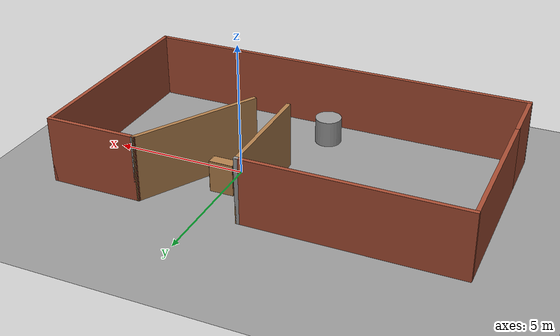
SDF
<sdf version="1.6">
 <world name="default">
  <light name="sun" type="directional">
   <pose>0 0 10 0 -0 0</pose>
   <diffuse>0.8 0.8 0.8 1</diffuse>
   <specular>0.2 0.2 0.2 1</specular>
   <attenuation>
    <range>1000</range>
    <constant>0.9</constant>
    <linear>0.01</linear>
    <quadratic>0.001</quadratic>
   </attenuation>
   <direction>0.5 0.1 -0.9</direction>
  </light>
  <scene><ambient>0.4 0.4 0.4 1</ambient><background>0.7 0.7 0.7 1</background><shadows>1</shadows></scene>
  <physics name="default_physics" default="0" type="ode">
   <max_step_size>0.01</max_step_size>
   <real_time_factor>1</real_time_factor>
   <real_time_update_rate>100</real_time_update_rate>
  </physics>
  <model name="bookshelf">
   <static>1</static>
   <link name="link">
    <inertial><mass>1</mass></inertial>
    <collision name="back">
     <pose>0 0.005 0.6 0 -0 0</pose>
     <geometry><box><size>0.9 0.01 1.2</size></box></geometry>
    </collision>
    <visual name="visual1">
     <pose>0 0.005 0.6 0 -0 0</pose>
     <geometry><box><size>0.9 0.01 1.2</size></box></geometry>
     <material>
      <script><uri>file://media/materials/scripts/gazebo.material</uri><name>Gazebo/Wood</name></script>
     </material>
    </visual>
    <collision name="left_side">
     <pose>0.45 -0.195 0.6 0 -0 0</pose>
     <geometry><box><size>0.02 0.4 1.2</size></box></geometry>
    </collision>
    <visual name="visual2">
     <pose>0.45 -0.195 0.6 0 -0 0</pose>
     <geometry><box><size>0.02 0.4 1.2</size></box></geometry>
     <material>
      <script><uri>file://media/materials/scripts/gazebo.material</uri><name>Gazebo/Wood</name></script>
     </material>
    </visual>
    <collision name="right_side">
     <pose>-0.45 -0.195 0.6 0 -0 0</pose>
     <geometry><box><size>0.02 0.4 1.2</size></box></geometry>
    </collision>
    <visual name="visual3">
     <pose>-0.45 -0.195 0.6 0 -0 0</pose>
     <geometry><box><size>0.02 0.4 1.2</size></box></geometry>
     <material>
      <script><uri>file://media/materials/scripts/gazebo.material</uri><name>Gazebo/Wood</name></script>
     </material>
    </visual>
    <collision name="bottom">
     <pose>0 -0.195 0.03 0 -0 0</pose>
     <geometry><box><size>0.88 0.4 0.06</size></box></geometry>
    </collision>
    <visual name="visual4">
     <pose>0 -0.195 0.03 0 -0 0</pose>
     <geometry><box><size>0.88 0.4 0.06</size></box></geometry>
     <material>
      <script><uri>file://media/materials/scripts/gazebo.material</uri><name>Gazebo/Wood</name></script>
     </material>
    </visual>
    <collision name="top">
     <pose>0 -0.195 1.19 0 -0 0</pose>
     <geometry><box><size>0.88 0.4 0.02</size></box></geometry>
    </collision>
    <visual name="visual5">
     <pose>0 -0.195 1.19 0 -0 0</pose>
     <geometry><box><size>0.88 0.4 0.02</size></box></geometry>
     <material>
      <script><uri>file://media/materials/scripts/gazebo.material</uri><name>Gazebo/Wood</name></script>
     </material>
    </visual>
    <collision name="low_shelf">
     <pose>0 -0.195 0.43 0 -0 0</pose>
     <geometry><box><size>0.88 0.4 0.02</size></box></geometry>
    </collision>
    <visual name="visual6">
     <pose>0 -0.195 0.43 0 -0 0</pose>
     <geometry><box><size>0.88 0.4 0.02</size></box></geometry>
     <material>
      <script><uri>file://media/materials/scripts/gazebo.material</uri><name>Gazebo/Wood</name></script>
     </material>
    </visual>
    <collision name="high_shelf">
     <pose>0 -0.195 0.8 0 -0 0</pose>
     <geometry><box><size>0.88 0.4 0.02</size></box></geometry>
    </collision>
    <visual name="visual7">
     <pose>0 -0.195 0.8 0 -0 0</pose>
     <geometry><box><size>0.88 0.4 0.02</size></box></geometry>
     <material>
      <script><uri>file://media/materials/scripts/gazebo.material</uri><name>Gazebo/Wood</name></script>
     </material>
    </visual>
    <velocity_decay><linear>0</linear><angular>0</angular></velocity_decay>
   </link>
   <pose>0 1.53026 0 0 -0 0</pose>
  </model>
  <model name="ground_plane_0">
   <static>1</static>
   <link name="link">
    <collision name="collision">
     <geometry><plane><normal>0 0 1</normal><size>100 100</size></plane></geometry>
     <surface><friction><ode><mu>100</mu><mu2>50</mu2></ode></friction></surface>
    </collision>
    <visual name="visual">
     <cast_shadows>0</cast_shadows>
     <geometry><plane><normal>0 0 1</normal><size>100 100</size></plane></geometry>
     <material>
      <script><uri>file://media/materials/scripts/gazebo.material</uri><name>Gazebo/Grey</name></script>
     </material>
    </visual>
    <velocity_decay><linear>0</linear><angular>0</angular></velocity_decay>
   </link>
   <pose>0.497681 0 0 0 -0 0</pose>
  </model>
  <model name="unit_cylinder_1">
   <pose>-2 -3.4888 0.5 0 -0 0</pose>
   <link name="link">
    <inertial>
     <mass>1</mass>
     <inertia><ixx>1</ixx><ixy>0</ixy><ixz>0</ixz><iyy>1</iyy><iyz>0</iyz><izz>1</izz></inertia>
    </inertial>
    <collision name="collision">
     <geometry><cylinder><radius>0.5</radius><length>1</length></cylinder></geometry>
    </collision>
    <visual name="visual">
     <geometry><cylinder><radius>0.5</radius><length>1</length></cylinder></geometry>
     <material>
      <script><uri>file://media/materials/scripts/gazebo.material</uri><name>Gazebo/Grey</name></script>
     </material>
    </visual>
    <velocity_decay><linear>0</linear><angular>0</angular></velocity_decay>
   </link>
   <static>0</static>
  </model>
  <gravity>0 0 -9.8</gravity>
  <magnetic_field>6e-06 2.3e-05 -4.2e-05</magnetic_field>
  <atmosphere type="adiabatic"/>
  <spherical_coordinates>
   <surface_model>EARTH_WGS84</surface_model>
   <latitude_deg>0</latitude_deg>
   <longitude_deg>0</longitude_deg>
   <elevation>0</elevation>
   <heading_deg>0</heading_deg>
  </spherical_coordinates>
  <model name="home">
   <pose>-1.7113 -0.862075 0 0 -0 0</pose>
   <link name="Wall_10">
    <collision name="Wall_10_Collision">
     <geometry><box><size>3.5 0.15 2.5</size></box></geometry>
     <pose>0 0 1.25 0 -0 0</pose>
    </collision>
    <visual name="Wall_10_Visual">
     <pose>0 0 1.25 0 -0 0</pose>
     <geometry><box><size>3.5 0.15 2.5</size></box></geometry>
     <material>
      <script><uri>file://media/materials/scripts/gazebo.material</uri><name>Gazebo/Bricks</name></script>
      <ambient>1 1 1 1</ambient>
     </material>
     <meta><layer>0</layer></meta>
    </visual>
    <pose>5.8125 3.9114 0 0 -0 0</pose>
   </link>
   <link name="Wall_11">
    <collision name="Wall_11_Collision">
     <geometry><box><size>8 0.15 2.5</size></box></geometry>
     <pose>0 0 1.25 0 -0 0</pose>
    </collision>
    <visual name="Wall_11_Visual">
     <pose>0 0 1.25 0 -0 0</pose>
     <geometry><box><size>8 0.15 2.5</size></box></geometry>
     <material>
      <script><uri>file://media/materials/scripts/gazebo.material</uri><name>Gazebo/Bricks</name></script>
      <ambient>1 1 1 1</ambient>
     </material>
     <meta><layer>0</layer></meta>
    </visual>
    <pose>7.4875 -0.013601 0 0 0 -1.5708</pose>
   </link>
   <link name="Wall_14">
    <collision name="Wall_14_Collision">
     <geometry><box><size>2.25 0.15 2.5</size></box></geometry>
     <pose>0 0 1.25 0 -0 0</pose>
    </collision>
    <visual name="Wall_14_Visual">
     <pose>0 0 1.25 0 -0 0</pose>
     <geometry><box><size>2.25 0.15 2.5</size></box></geometry>
     <material>
      <script><uri>file://media/materials/scripts/gazebo.material</uri><name>Gazebo/Bricks</name></script>
      <ambient>1 1 1 1</ambient>
     </material>
     <meta><layer>0</layer></meta>
    </visual>
    <pose>-7.4875 -2.83882 0 0 0 -1.5708</pose>
   </link>
   <link name="Wall_18">
    <collision name="Wall_18_Collision">
     <geometry><box><size>15.1251 0.15 2.5</size></box></geometry>
     <pose>0 0 1.25 0 -0 0</pose>
    </collision>
    <visual name="Wall_18_Visual">
     <pose>0 0 1.25 0 -0 0</pose>
     <geometry><box><size>15.1251 0.15 2.5</size></box></geometry>
     <material>
      <script><uri>file://media/materials/scripts/gazebo.material</uri><name>Gazebo/Bricks</name></script>
      <ambient>1 1 1 1</ambient>
     </material>
     <meta><layer>0</layer></meta>
    </visual>
    <pose>0 -3.91371 0 0 0 -0.003324</pose>
   </link>
   <link name="Wall_2">
    <collision name="Wall_2_Collision">
     <geometry><box><size>4.25 0.15 2.5</size></box></geometry>
     <pose>0 0 1.25 0 -0 0</pose>
    </collision>
    <visual name="Wall_2_Visual">
     <pose>0 0 1.25 0 -0 0</pose>
     <geometry><box><size>4.25 0.15 2.5</size></box></geometry>
     <material>
      <script><uri>file://media/materials/scripts/gazebo.material</uri><name>Gazebo/Wood</name></script>
      <ambient>1 1 1 1</ambient>
     </material>
     <meta><layer>0</layer></meta>
    </visual>
    <pose>0.3625 1.76117 0 0 -0 1.5708</pose>
   </link>
   <link name="Wall_3">
    <collision name="Wall_3_Collision">
     <geometry><box><size>0.15 0.15 2.5</size></box></geometry>
     <pose>0 0 1.25 0 -0 0</pose>
    </collision>
    <visual name="Wall_3_Visual">
     <pose>0 0 1.25 0 -0 0</pose>
     <geometry><box><size>0.15 0.15 2.5</size></box></geometry>
     <material>
      <script><uri>file://media/materials/scripts/gazebo.material</uri><name>Gazebo/Grey</name></script>
      <ambient>1 1 1 1</ambient>
     </material>
     <meta><layer>0</layer></meta>
    </visual>
    <pose>0.3625 3.81117 0 0 -0 0</pose>
   </link>
   <link name="Wall_4">
    <collision name="Wall_4_Collision">
     <geometry><box><size>8 0.15 2.5</size></box></geometry>
     <pose>0 0 1.25 0 -0 0</pose>
    </collision>
    <visual name="Wall_4_Visual">
     <pose>0 0 1.25 0 -0 0</pose>
     <geometry><box><size>8 0.15 2.5</size></box></geometry>
     <material>
      <script><uri>file://media/materials/scripts/gazebo.material</uri><name>Gazebo/Bricks</name></script>
      <ambient>1 1 1 1</ambient>
     </material>
     <meta><layer>0</layer></meta>
    </visual>
    <pose>-3.5625 3.81117 0 0 -0 3.14159</pose>
   </link>
   <link name="Wall_5">
    <collision name="Wall_5_Collision">
     <geometry><box><size>5.75 0.15 2.5</size></box></geometry>
     <pose>0 0 1.25 0 -0 0</pose>
    </collision>
    <visual name="Wall_5_Visual">
     <pose>0 0 1.25 0 -0 0</pose>
     <geometry><box><size>5.75 0.15 2.5</size></box></geometry>
     <material>
      <script><uri>file://media/materials/scripts/gazebo.material</uri><name>Gazebo/Bricks</name></script>
      <ambient>1 1 1 1</ambient>
     </material>
     <meta><layer>0</layer></meta>
    </visual>
    <pose>-7.4875 1.01117 0 0 0 -1.5708</pose>
   </link>
   <link name="Wall_8">
    <collision name="Wall_8_Collision">
     <geometry><box><size>5 0.15 2.5</size></box></geometry>
     <pose>0 0 1.25 0 -0 0</pose>
    </collision>
    <visual name="Wall_8_Visual">
     <pose>0 0 1.25 0 -0 0</pose>
     <geometry><box><size>5 0.15 2.5</size></box></geometry>
     <material>
      <script><uri>file://media/materials/scripts/gazebo.material</uri><name>Gazebo/Wood</name></script>
      <ambient>1 1 1 1</ambient>
     </material>
     <meta><layer>0</layer></meta>
    </visual>
    <pose>2.925 1.81129 0 0 -0 1.0472</pose>
   </link>
   <link name="Wall_9">
    <collision name="Wall_9_Collision">
     <geometry><box><size>0.15 0.15 2.5</size></box></geometry>
     <pose>0 0 1.25 0 -0 0</pose>
    </collision>
    <visual name="Wall_9_Visual">
     <pose>0 0 1.25 0 -0 0</pose>
     <geometry><box><size>0.15 0.15 2.5</size></box></geometry>
     <material>
      <script><uri>file://media/materials/scripts/gazebo.material</uri><name>Gazebo/Grey</name></script>
      <ambient>1 1 1 1</ambient>
     </material>
     <meta><layer>0</layer></meta>
    </visual>
    <pose>4.1375 3.9114 0 0 -0 0</pose>
   </link>
   <static>1</static>
  </model>
 </world>
</sdf>
